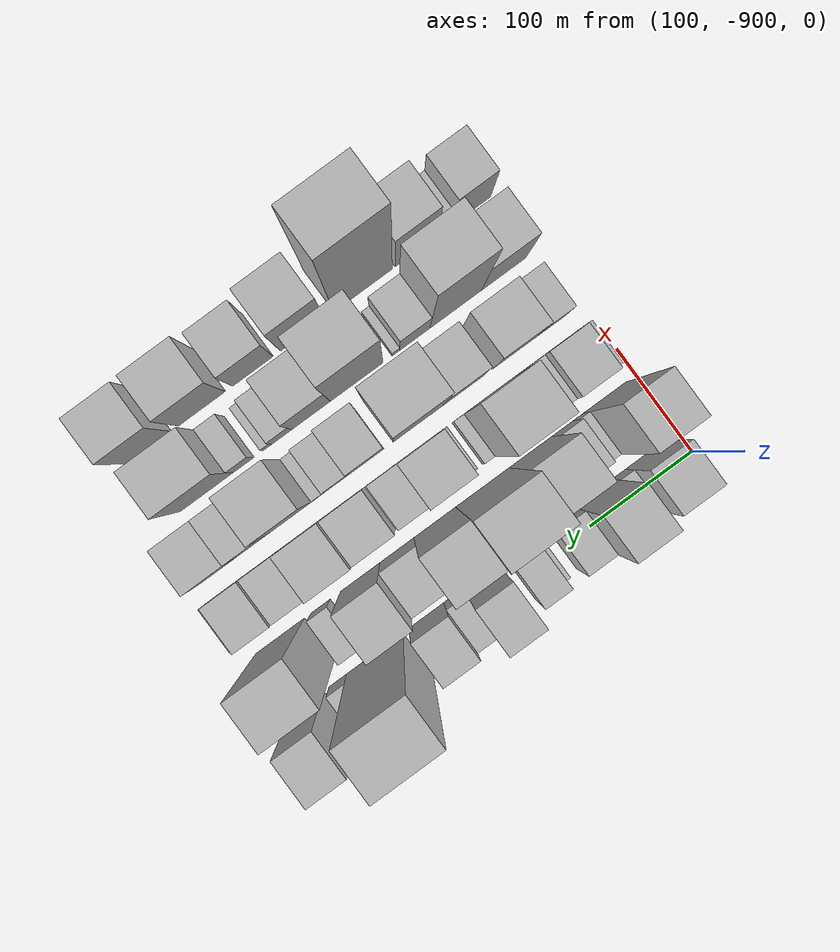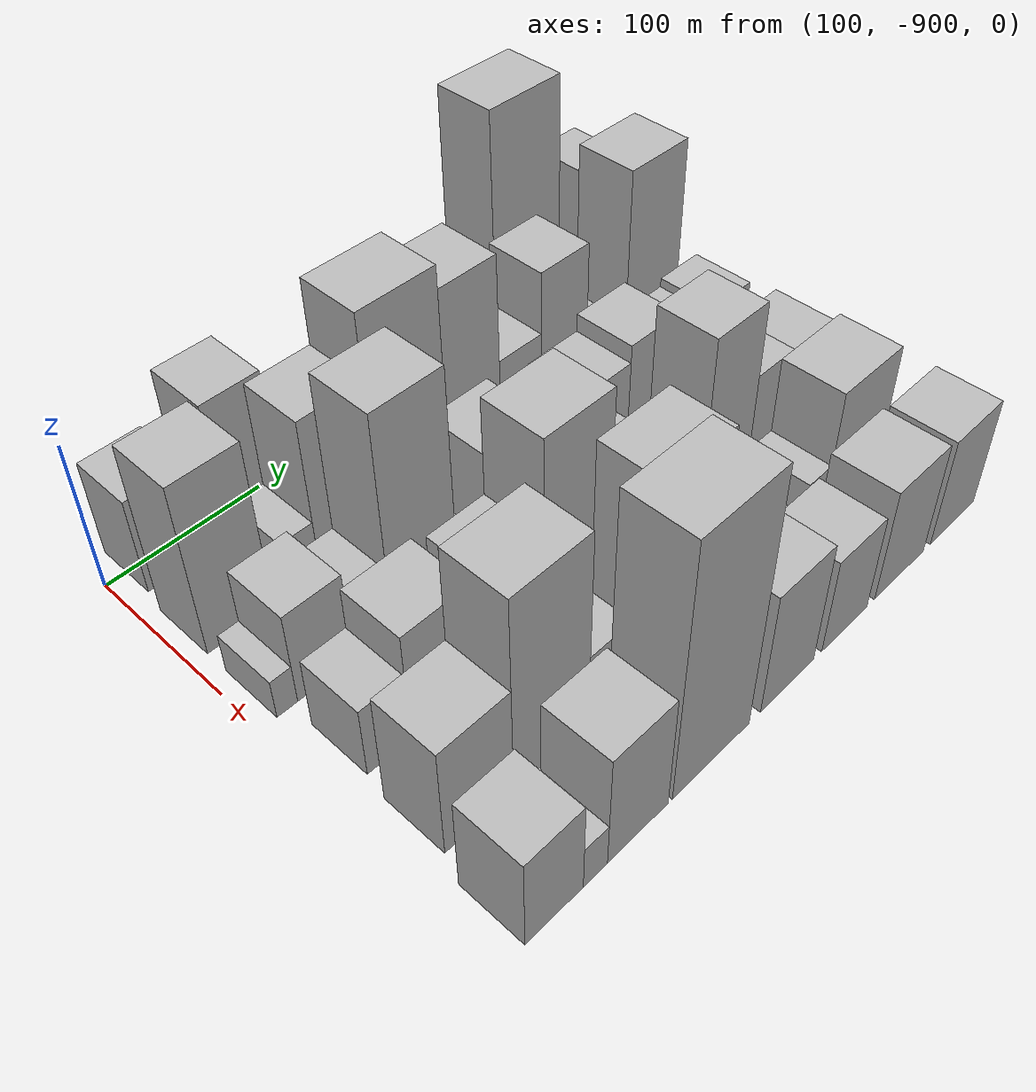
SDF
<sdf version="1.6">
 <world name="default">
  <model name="building_1">
   <static>1</static>
   <pose>100.0000 -868.0368 0 0.000000 0.000000 0.000000</pose>
   <link name="link">
    <pose>0 0 33.00 0 0 0</pose>
    <collision name="collision"><geometry><box><size>40.0000 37.9263 66.0000</size></box></geometry></collision>
    <visual name="visual">
     <cast_shadows>0</cast_shadows>
     <geometry><box><size>40.0000 37.9263 66.0000</size></box></geometry>
     <material>
      <script>
       <uri>model://HANNAS_wall/materials/scripts</uri>
       <uri>model://HANNAS_wall/materials/textures</uri>
       <name>vrc/HANNAS_wall</name>
      </script>
     </material>
    </visual>
   </link>
  </model>
  <model name="building_2">
   <static>1</static>
   <pose>100.0000 -842.5686 0 0.000000 0.000000 0.000000</pose>
   <link name="link">
    <pose>0 0 13.50 0 0 0</pose>
    <collision name="collision"><geometry><box><size>40.0000 13.0102 27.0000</size></box></geometry></collision>
    <visual name="visual">
     <cast_shadows>0</cast_shadows>
     <geometry><box><size>40.0000 13.0102 27.0000</size></box></geometry>
     <material>
      <script>
       <uri>model://HANNAS_wall/materials/scripts</uri>
       <uri>model://HANNAS_wall/materials/textures</uri>
       <name>vrc/HANNAS_wall</name>
      </script>
     </material>
    </visual>
   </link>
  </model>
  <model name="building_3">
   <static>1</static>
   <pose>100.0000 -817.3078 0 0.000000 0.000000 0.000000</pose>
   <link name="link">
    <pose>0 0 48.00 0 0 0</pose>
    <collision name="collision"><geometry><box><size>40.0000 37.5114 96.0000</size></box></geometry></collision>
    <visual name="visual">
     <cast_shadows>0</cast_shadows>
     <geometry><box><size>40.0000 37.5114 96.0000</size></box></geometry>
     <material>
      <script>
       <uri>model://HANNAS_wall/materials/scripts</uri>
       <uri>model://HANNAS_wall/materials/textures</uri>
       <name>vrc/HANNAS_wall</name>
      </script>
     </material>
    </visual>
   </link>
  </model>
  <model name="building_4">
   <static>1</static>
   <pose>100.0000 -785.2617 0 0.000000 0.000000 0.000000</pose>
   <link name="link">
    <pose>0 0 22.50 0 0 0</pose>
    <collision name="collision"><geometry><box><size>40.0000 26.5808 45.0000</size></box></geometry></collision>
    <visual name="visual">
     <cast_shadows>0</cast_shadows>
     <geometry><box><size>40.0000 26.5808 45.0000</size></box></geometry>
     <material>
      <script>
       <uri>model://HANNAS_wall/materials/scripts</uri>
       <uri>model://HANNAS_wall/materials/textures</uri>
       <name>vrc/HANNAS_wall</name>
      </script>
     </material>
    </visual>
   </link>
  </model>
  <model name="building_5">
   <static>1</static>
   <pose>100.0000 -759.9221 0 0.000000 0.000000 0.000000</pose>
   <link name="link">
    <pose>0 0 7.50 0 0 0</pose>
    <collision name="collision"><geometry><box><size>40.0000 6.0984 15.0000</size></box></geometry></collision>
    <visual name="visual">
     <cast_shadows>0</cast_shadows>
     <geometry><box><size>40.0000 6.0984 15.0000</size></box></geometry>
     <material>
      <script>
       <uri>model://HANNAS_wall/materials/scripts</uri>
       <uri>model://HANNAS_wall/materials/textures</uri>
       <name>vrc/HANNAS_wall</name>
      </script>
     </material>
    </visual>
   </link>
  </model>
  <model name="building_6">
   <static>1</static>
   <pose>100.0000 -744.2797 0 0.000000 0.000000 0.000000</pose>
   <link name="link">
    <pose>0 0 24.00 0 0 0</pose>
    <collision name="collision"><geometry><box><size>40.0000 25.1863 48.0000</size></box></geometry></collision>
    <visual name="visual">
     <cast_shadows>0</cast_shadows>
     <geometry><box><size>40.0000 25.1863 48.0000</size></box></geometry>
     <material>
      <script>
       <uri>model://HANNAS_wall/materials/scripts</uri>
       <uri>model://HANNAS_wall/materials/textures</uri>
       <name>vrc/HANNAS_wall</name>
      </script>
     </material>
    </visual>
   </link>
  </model>
  <model name="building_7">
   <static>1</static>
   <pose>100.0000 -707.6128 0 0.000000 0.000000 0.000000</pose>
   <link name="link">
    <pose>0 0 48.00 0 0 0</pose>
    <collision name="collision"><geometry><box><size>40.0000 32.1476 96.0000</size></box></geometry></collision>
    <visual name="visual">
     <cast_shadows>0</cast_shadows>
     <geometry><box><size>40.0000 32.1476 96.0000</size></box></geometry>
     <material>
      <script>
       <uri>model://HANNAS_wall/materials/scripts</uri>
       <uri>model://HANNAS_wall/materials/textures</uri>
       <name>vrc/HANNAS_wall</name>
      </script>
     </material>
    </visual>
   </link>
  </model>
  <model name="building_8">
   <static>1</static>
   <pose>100.0000 -681.8017 0 0.000000 0.000000 0.000000</pose>
   <link name="link">
    <pose>0 0 16.50 0 0 0</pose>
    <collision name="collision"><geometry><box><size>40.0000 19.4746 33.0000</size></box></geometry></collision>
    <visual name="visual">
     <cast_shadows>0</cast_shadows>
     <geometry><box><size>40.0000 19.4746 33.0000</size></box></geometry>
     <material>
      <script>
       <uri>model://HANNAS_wall/materials/scripts</uri>
       <uri>model://HANNAS_wall/materials/textures</uri>
       <name>vrc/HANNAS_wall</name>
      </script>
     </material>
    </visual>
   </link>
  </model>
  <model name="building_9">
   <static>1</static>
   <pose>100.0000 -655.2285 0 0.000000 0.000000 0.000000</pose>
   <link name="link">
    <pose>0 0 28.50 0 0 0</pose>
    <collision name="collision"><geometry><box><size>40.0000 33.6718 57.0000</size></box></geometry></collision>
    <visual name="visual">
     <cast_shadows>0</cast_shadows>
     <geometry><box><size>40.0000 33.6718 57.0000</size></box></geometry>
     <material>
      <script>
       <uri>model://HANNAS_wall/materials/scripts</uri>
       <uri>model://HANNAS_wall/materials/textures</uri>
       <name>vrc/HANNAS_wall</name>
      </script>
     </material>
    </visual>
   </link>
  </model>
  <model name="building_10">
   <static>1</static>
   <pose>100.0000 -604.8652 0 0.000000 0.000000 0.000000</pose>
   <link name="link">
    <pose>0 0 87.00 0 0 0</pose>
    <collision name="collision"><geometry><box><size>40.0000 55.0547 174.0000</size></box></geometry></collision>
    <visual name="visual">
     <cast_shadows>0</cast_shadows>
     <geometry><box><size>40.0000 55.0547 174.0000</size></box></geometry>
     <material>
      <script>
       <uri>model://HANNAS_wall/materials/scripts</uri>
       <uri>model://HANNAS_wall/materials/textures</uri>
       <name>vrc/HANNAS_wall</name>
      </script>
     </material>
    </visual>
   </link>
  </model>
  <model name="building_11">
   <static>1</static>
   <pose>100.0000 -568.7729 0 0.000000 0.000000 0.000000</pose>
   <link name="link">
    <pose>0 0 15.00 0 0 0</pose>
    <collision name="collision"><geometry><box><size>40.0000 17.1299 30.0000</size></box></geometry></collision>
    <visual name="visual">
     <cast_shadows>0</cast_shadows>
     <geometry><box><size>40.0000 17.1299 30.0000</size></box></geometry>
     <material>
      <script>
       <uri>model://HANNAS_wall/materials/scripts</uri>
       <uri>model://HANNAS_wall/materials/textures</uri>
       <name>vrc/HANNAS_wall</name>
      </script>
     </material>
    </visual>
   </link>
  </model>
  <model name="building_12">
   <static>1</static>
   <pose>100.0000 -538.1384 0 0.000000 0.000000 0.000000</pose>
   <link name="link">
    <pose>0 0 49.50 0 0 0</pose>
    <collision name="collision"><geometry><box><size>40.0000 34.1391 99.0000</size></box></geometry></collision>
    <visual name="visual">
     <cast_shadows>0</cast_shadows>
     <geometry><box><size>40.0000 34.1391 99.0000</size></box></geometry>
     <material>
      <script>
       <uri>model://HANNAS_wall/materials/scripts</uri>
       <uri>model://HANNAS_wall/materials/textures</uri>
       <name>vrc/HANNAS_wall</name>
      </script>
     </material>
    </visual>
   </link>
  </model>
  <model name="building_53">
   <static>1</static>
   <pose>155.0000 -869.2800 0 0.000000 0.000000 0.000000</pose>
   <link name="link">
    <pose>0 0 58.50 0 0 0</pose>
    <collision name="collision"><geometry><box><size>40.0000 41.4399 117.0000</size></box></geometry></collision>
    <visual name="visual">
     <cast_shadows>0</cast_shadows>
     <geometry><box><size>40.0000 41.4399 117.0000</size></box></geometry>
     <material>
      <script>
       <uri>model://HANNAS_wall/materials/scripts</uri>
       <uri>model://HANNAS_wall/materials/textures</uri>
       <name>vrc/HANNAS_wall</name>
      </script>
     </material>
    </visual>
   </link>
  </model>
  <model name="building_54">
   <static>1</static>
   <pose>155.0000 -843.5102 0 0.000000 0.000000 0.000000</pose>
   <link name="link">
    <pose>0 0 12.00 0 0 0</pose>
    <collision name="collision"><geometry><box><size>40.0000 10.0998 24.0000</size></box></geometry></collision>
    <visual name="visual">
     <cast_shadows>0</cast_shadows>
     <geometry><box><size>40.0000 10.0998 24.0000</size></box></geometry>
     <material>
      <script>
       <uri>model://HANNAS_wall/materials/scripts</uri>
       <uri>model://HANNAS_wall/materials/textures</uri>
       <name>vrc/HANNAS_wall</name>
      </script>
     </material>
    </visual>
   </link>
  </model>
  <model name="building_55">
   <static>1</static>
   <pose>155.0000 -828.0218 0 0.000000 0.000000 0.000000</pose>
   <link name="link">
    <pose>0 0 19.50 0 0 0</pose>
    <collision name="collision"><geometry><box><size>40.0000 20.8770 39.0000</size></box></geometry></collision>
    <visual name="visual">
     <cast_shadows>0</cast_shadows>
     <geometry><box><size>40.0000 20.8770 39.0000</size></box></geometry>
     <material>
      <script>
       <uri>model://HANNAS_wall/materials/scripts</uri>
       <uri>model://HANNAS_wall/materials/textures</uri>
       <name>vrc/HANNAS_wall</name>
      </script>
     </material>
    </visual>
   </link>
  </model>
  <model name="building_56">
   <static>1</static>
   <pose>155.0000 -796.8776 0 0.000000 0.000000 0.000000</pose>
   <link name="link">
    <pose>0 0 54.00 0 0 0</pose>
    <collision name="collision"><geometry><box><size>40.0000 41.4112 108.0000</size></box></geometry></collision>
    <visual name="visual">
     <cast_shadows>0</cast_shadows>
     <geometry><box><size>40.0000 41.4112 108.0000</size></box></geometry>
     <material>
      <script>
       <uri>model://HANNAS_wall/materials/scripts</uri>
       <uri>model://HANNAS_wall/materials/textures</uri>
       <name>vrc/HANNAS_wall</name>
      </script>
     </material>
    </visual>
   </link>
  </model>
  <model name="building_57">
   <static>1</static>
   <pose>155.0000 -750.1377 0 0.000000 0.000000 0.000000</pose>
   <link name="link">
    <pose>0 0 75.00 0 0 0</pose>
    <collision name="collision"><geometry><box><size>40.0000 52.0687 150.0000</size></box></geometry></collision>
    <visual name="visual">
     <cast_shadows>0</cast_shadows>
     <geometry><box><size>40.0000 52.0687 150.0000</size></box></geometry>
     <material>
      <script>
       <uri>model://HANNAS_wall/materials/scripts</uri>
       <uri>model://HANNAS_wall/materials/textures</uri>
       <name>vrc/HANNAS_wall</name>
      </script>
     </material>
    </visual>
   </link>
  </model>
  <model name="building_58">
   <static>1</static>
   <pose>155.0000 -703.7140 0 0.000000 0.000000 0.000000</pose>
   <link name="link">
    <pose>0 0 67.50 0 0 0</pose>
    <collision name="collision"><geometry><box><size>40.0000 40.7788 135.0000</size></box></geometry></collision>
    <visual name="visual">
     <cast_shadows>0</cast_shadows>
     <geometry><box><size>40.0000 40.7788 135.0000</size></box></geometry>
     <material>
      <script>
       <uri>model://HANNAS_wall/materials/scripts</uri>
       <uri>model://HANNAS_wall/materials/textures</uri>
       <name>vrc/HANNAS_wall</name>
      </script>
     </material>
    </visual>
   </link>
  </model>
  <model name="building_59">
   <static>1</static>
   <pose>155.0000 -666.7864 0 0.000000 0.000000 0.000000</pose>
   <link name="link">
    <pose>0 0 31.50 0 0 0</pose>
    <collision name="collision"><geometry><box><size>40.0000 33.0764 63.0000</size></box></geometry></collision>
    <visual name="visual">
     <cast_shadows>0</cast_shadows>
     <geometry><box><size>40.0000 33.0764 63.0000</size></box></geometry>
     <material>
      <script>
       <uri>model://HANNAS_wall/materials/scripts</uri>
       <uri>model://HANNAS_wall/materials/textures</uri>
       <name>vrc/HANNAS_wall</name>
      </script>
     </material>
    </visual>
   </link>
  </model>
  <model name="building_60">
   <static>1</static>
   <pose>155.0000 -631.1089 0 0.000000 0.000000 0.000000</pose>
   <link name="link">
    <pose>0 0 52.50 0 0 0</pose>
    <collision name="collision"><geometry><box><size>40.0000 38.2786 105.0000</size></box></geometry></collision>
    <visual name="visual">
     <cast_shadows>0</cast_shadows>
     <geometry><box><size>40.0000 38.2786 105.0000</size></box></geometry>
     <material>
      <script>
       <uri>model://HANNAS_wall/materials/scripts</uri>
       <uri>model://HANNAS_wall/materials/textures</uri>
       <name>vrc/HANNAS_wall</name>
      </script>
     </material>
    </visual>
   </link>
  </model>
  <model name="building_61">
   <static>1</static>
   <pose>155.0000 -592.5322 0 0.000000 0.000000 0.000000</pose>
   <link name="link">
    <pose>0 0 18.00 0 0 0</pose>
    <collision name="collision"><geometry><box><size>40.0000 18.8749 36.0000</size></box></geometry></collision>
    <visual name="visual">
     <cast_shadows>0</cast_shadows>
     <geometry><box><size>40.0000 18.8749 36.0000</size></box></geometry>
     <material>
      <script>
       <uri>model://HANNAS_wall/materials/scripts</uri>
       <uri>model://HANNAS_wall/materials/textures</uri>
       <name>vrc/HANNAS_wall</name>
      </script>
     </material>
    </visual>
   </link>
  </model>
  <model name="building_62">
   <static>1</static>
   <pose>155.0000 -553.3188 0 0.000000 0.000000 0.000000</pose>
   <link name="link">
    <pose>0 0 67.50 0 0 0</pose>
    <collision name="collision"><geometry><box><size>40.0000 47.5519 135.0000</size></box></geometry></collision>
    <visual name="visual">
     <cast_shadows>0</cast_shadows>
     <geometry><box><size>40.0000 47.5519 135.0000</size></box></geometry>
     <material>
      <script>
       <uri>model://HANNAS_wall/materials/scripts</uri>
       <uri>model://HANNAS_wall/materials/textures</uri>
       <name>vrc/HANNAS_wall</name>
      </script>
     </material>
    </visual>
   </link>
  </model>
  <model name="building_107">
   <static>1</static>
   <pose>210.0000 -883.6579 0 0.000000 0.000000 0.000000</pose>
   <link name="link">
    <pose>0 0 13.50 0 0 0</pose>
    <collision name="collision"><geometry><box><size>40.0000 12.6842 27.0000</size></box></geometry></collision>
    <visual name="visual">
     <cast_shadows>0</cast_shadows>
     <geometry><box><size>40.0000 12.6842 27.0000</size></box></geometry>
     <material>
      <script>
       <uri>model://HANNAS_wall/materials/scripts</uri>
       <uri>model://HANNAS_wall/materials/textures</uri>
       <name>vrc/HANNAS_wall</name>
      </script>
     </material>
    </visual>
   </link>
  </model>
  <model name="building_108">
   <static>1</static>
   <pose>210.0000 -859.7049 0 0.000000 0.000000 0.000000</pose>
   <link name="link">
    <pose>0 0 31.50 0 0 0</pose>
    <collision name="collision"><geometry><box><size>40.0000 35.2219 63.0000</size></box></geometry></collision>
    <visual name="visual">
     <cast_shadows>0</cast_shadows>
     <geometry><box><size>40.0000 35.2219 63.0000</size></box></geometry>
     <material>
      <script>
       <uri>model://HANNAS_wall/materials/scripts</uri>
       <uri>model://HANNAS_wall/materials/textures</uri>
       <name>vrc/HANNAS_wall</name>
      </script>
     </material>
    </visual>
   </link>
  </model>
  <model name="building_109">
   <static>1</static>
   <pose>210.0000 -829.1341 0 0.000000 0.000000 0.000000</pose>
   <link name="link">
    <pose>0 0 22.50 0 0 0</pose>
    <collision name="collision"><geometry><box><size>40.0000 25.9196 45.0000</size></box></geometry></collision>
    <visual name="visual">
     <cast_shadows>0</cast_shadows>
     <geometry><box><size>40.0000 25.9196 45.0000</size></box></geometry>
     <material>
      <script>
       <uri>model://HANNAS_wall/materials/scripts</uri>
       <uri>model://HANNAS_wall/materials/textures</uri>
       <name>vrc/HANNAS_wall</name>
      </script>
     </material>
    </visual>
   </link>
  </model>
  <model name="building_110">
   <static>1</static>
   <pose>210.0000 -793.3968 0 0.000000 0.000000 0.000000</pose>
   <link name="link">
    <pose>0 0 73.50 0 0 0</pose>
    <collision name="collision"><geometry><box><size>40.0000 45.5552 147.0000</size></box></geometry></collision>
    <visual name="visual">
     <cast_shadows>0</cast_shadows>
     <geometry><box><size>40.0000 45.5552 147.0000</size></box></geometry>
     <material>
      <script>
       <uri>model://HANNAS_wall/materials/scripts</uri>
       <uri>model://HANNAS_wall/materials/textures</uri>
       <name>vrc/HANNAS_wall</name>
      </script>
     </material>
    </visual>
   </link>
  </model>
  <model name="building_111">
   <static>1</static>
   <pose>210.0000 -765.7696 0 0.000000 0.000000 0.000000</pose>
   <link name="link">
    <pose>0 0 10.50 0 0 0</pose>
    <collision name="collision"><geometry><box><size>40.0000 9.6991 21.0000</size></box></geometry></collision>
    <visual name="visual">
     <cast_shadows>0</cast_shadows>
     <geometry><box><size>40.0000 9.6991 21.0000</size></box></geometry>
     <material>
      <script>
       <uri>model://HANNAS_wall/materials/scripts</uri>
       <uri>model://HANNAS_wall/materials/textures</uri>
       <name>vrc/HANNAS_wall</name>
      </script>
     </material>
    </visual>
   </link>
  </model>
  <model name="building_112">
   <static>1</static>
   <pose>210.0000 -751.7838 0 0.000000 0.000000 0.000000</pose>
   <link name="link">
    <pose>0 0 7.50 0 0 0</pose>
    <collision name="collision"><geometry><box><size>40.0000 6.2725 15.0000</size></box></geometry></collision>
    <visual name="visual">
     <cast_shadows>0</cast_shadows>
     <geometry><box><size>40.0000 6.2725 15.0000</size></box></geometry>
     <material>
      <script>
       <uri>model://HANNAS_wall/materials/scripts</uri>
       <uri>model://HANNAS_wall/materials/textures</uri>
       <name>vrc/HANNAS_wall</name>
      </script>
     </material>
    </visual>
   </link>
  </model>
  <model name="building_113">
   <static>1</static>
   <pose>210.0000 -727.8147 0 0.000000 0.000000 0.000000</pose>
   <link name="link">
    <pose>0 0 37.50 0 0 0</pose>
    <collision name="collision"><geometry><box><size>40.0000 41.6658 75.0000</size></box></geometry></collision>
    <visual name="visual">
     <cast_shadows>0</cast_shadows>
     <geometry><box><size>40.0000 41.6658 75.0000</size></box></geometry>
     <material>
      <script>
       <uri>model://HANNAS_wall/materials/scripts</uri>
       <uri>model://HANNAS_wall/materials/textures</uri>
       <name>vrc/HANNAS_wall</name>
      </script>
     </material>
    </visual>
   </link>
  </model>
  <model name="building_114">
   <static>1</static>
   <pose>210.0000 -693.0109 0 0.000000 0.000000 0.000000</pose>
   <link name="link">
    <pose>0 0 24.00 0 0 0</pose>
    <collision name="collision"><geometry><box><size>40.0000 27.9417 48.0000</size></box></geometry></collision>
    <visual name="visual">
     <cast_shadows>0</cast_shadows>
     <geometry><box><size>40.0000 27.9417 48.0000</size></box></geometry>
     <material>
      <script>
       <uri>model://HANNAS_wall/materials/scripts</uri>
       <uri>model://HANNAS_wall/materials/textures</uri>
       <name>vrc/HANNAS_wall</name>
      </script>
     </material>
    </visual>
   </link>
  </model>
  <model name="building_115">
   <static>1</static>
   <pose>210.0000 -656.7747 0 0.000000 0.000000 0.000000</pose>
   <link name="link">
    <pose>0 0 33.00 0 0 0</pose>
    <collision name="collision"><geometry><box><size>40.0000 38.5308 66.0000</size></box></geometry></collision>
    <visual name="visual">
     <cast_shadows>0</cast_shadows>
     <geometry><box><size>40.0000 38.5308 66.0000</size></box></geometry>
     <material>
      <script>
       <uri>model://HANNAS_wall/materials/scripts</uri>
       <uri>model://HANNAS_wall/materials/textures</uri>
       <name>vrc/HANNAS_wall</name>
      </script>
     </material>
    </visual>
   </link>
  </model>
  <model name="building_116">
   <static>1</static>
   <pose>210.0000 -617.6069 0 0.000000 0.000000 0.000000</pose>
   <link name="link">
    <pose>0 0 39.00 0 0 0</pose>
    <collision name="collision"><geometry><box><size>40.0000 39.8049 78.0000</size></box></geometry></collision>
    <visual name="visual">
     <cast_shadows>0</cast_shadows>
     <geometry><box><size>40.0000 39.8049 78.0000</size></box></geometry>
     <material>
      <script>
       <uri>model://HANNAS_wall/materials/scripts</uri>
       <uri>model://HANNAS_wall/materials/textures</uri>
       <name>vrc/HANNAS_wall</name>
      </script>
     </material>
    </visual>
   </link>
  </model>
  <model name="building_117">
   <static>1</static>
   <pose>210.0000 -579.8327 0 0.000000 0.000000 0.000000</pose>
   <link name="link">
    <pose>0 0 28.50 0 0 0</pose>
    <collision name="collision"><geometry><box><size>40.0000 29.7435 57.0000</size></box></geometry></collision>
    <visual name="visual">
     <cast_shadows>0</cast_shadows>
     <geometry><box><size>40.0000 29.7435 57.0000</size></box></geometry>
     <material>
      <script>
       <uri>model://HANNAS_wall/materials/scripts</uri>
       <uri>model://HANNAS_wall/materials/textures</uri>
       <name>vrc/HANNAS_wall</name>
      </script>
     </material>
    </visual>
   </link>
  </model>
  <model name="building_118">
   <static>1</static>
   <pose>210.0000 -548.5423 0 0.000000 0.000000 0.000000</pose>
   <link name="link">
    <pose>0 0 31.50 0 0 0</pose>
    <collision name="collision"><geometry><box><size>40.0000 32.8373 63.0000</size></box></geometry></collision>
    <visual name="visual">
     <cast_shadows>0</cast_shadows>
     <geometry><box><size>40.0000 32.8373 63.0000</size></box></geometry>
     <material>
      <script>
       <uri>model://HANNAS_wall/materials/scripts</uri>
       <uri>model://HANNAS_wall/materials/textures</uri>
       <name>vrc/HANNAS_wall</name>
      </script>
     </material>
    </visual>
   </link>
  </model>
  <model name="building_119">
   <static>1</static>
   <pose>210.0000 -526.5584 0 0.000000 0.000000 0.000000</pose>
   <link name="link">
    <pose>0 0 13.50 0 0 0</pose>
    <collision name="collision"><geometry><box><size>40.0000 11.1306 27.0000</size></box></geometry></collision>
    <visual name="visual">
     <cast_shadows>0</cast_shadows>
     <geometry><box><size>40.0000 11.1306 27.0000</size></box></geometry>
     <material>
      <script>
       <uri>model://HANNAS_wall/materials/scripts</uri>
       <uri>model://HANNAS_wall/materials/textures</uri>
       <name>vrc/HANNAS_wall</name>
      </script>
     </material>
    </visual>
   </link>
  </model>
  <model name="building_162">
   <static>1</static>
   <pose>265.0000 -867.4359 0 0.000000 0.000000 0.000000</pose>
   <link name="link">
    <pose>0 0 24.00 0 0 0</pose>
    <collision name="collision"><geometry><box><size>40.0000 27.1281 48.0000</size></box></geometry></collision>
    <visual name="visual">
     <cast_shadows>0</cast_shadows>
     <geometry><box><size>40.0000 27.1281 48.0000</size></box></geometry>
     <material>
      <script>
       <uri>model://HANNAS_wall/materials/scripts</uri>
       <uri>model://HANNAS_wall/materials/textures</uri>
       <name>vrc/HANNAS_wall</name>
      </script>
     </material>
    </visual>
   </link>
  </model>
  <model name="building_163">
   <static>1</static>
   <pose>265.0000 -832.4146 0 0.000000 0.000000 0.000000</pose>
   <link name="link">
    <pose>0 0 37.50 0 0 0</pose>
    <collision name="collision"><geometry><box><size>40.0000 42.9145 75.0000</size></box></geometry></collision>
    <visual name="visual">
     <cast_shadows>0</cast_shadows>
     <geometry><box><size>40.0000 42.9145 75.0000</size></box></geometry>
     <material>
      <script>
       <uri>model://HANNAS_wall/materials/scripts</uri>
       <uri>model://HANNAS_wall/materials/textures</uri>
       <name>vrc/HANNAS_wall</name>
      </script>
     </material>
    </visual>
   </link>
  </model>
  <model name="building_164">
   <static>1</static>
   <pose>265.0000 -782.6606 0 0.000000 0.000000 0.000000</pose>
   <link name="link">
    <pose>0 0 34.50 0 0 0</pose>
    <collision name="collision"><geometry><box><size>40.0000 38.5937 69.0000</size></box></geometry></collision>
    <visual name="visual">
     <cast_shadows>0</cast_shadows>
     <geometry><box><size>40.0000 38.5937 69.0000</size></box></geometry>
     <material>
      <script>
       <uri>model://HANNAS_wall/materials/scripts</uri>
       <uri>model://HANNAS_wall/materials/textures</uri>
       <name>vrc/HANNAS_wall</name>
      </script>
     </material>
    </visual>
   </link>
  </model>
  <model name="building_165">
   <static>1</static>
   <pose>265.0000 -739.0661 0 0.000000 0.000000 0.000000</pose>
   <link name="link">
    <pose>0 0 66.00 0 0 0</pose>
    <collision name="collision"><geometry><box><size>40.0000 48.5951 132.0000</size></box></geometry></collision>
    <visual name="visual">
     <cast_shadows>0</cast_shadows>
     <geometry><box><size>40.0000 48.5951 132.0000</size></box></geometry>
     <material>
      <script>
       <uri>model://HANNAS_wall/materials/scripts</uri>
       <uri>model://HANNAS_wall/materials/textures</uri>
       <name>vrc/HANNAS_wall</name>
      </script>
     </material>
    </visual>
   </link>
  </model>
  <model name="building_166">
   <static>1</static>
   <pose>265.0000 -688.9434 0 0.000000 0.000000 0.000000</pose>
   <link name="link">
    <pose>0 0 33.00 0 0 0</pose>
    <collision name="collision"><geometry><box><size>40.0000 33.6505 66.0000</size></box></geometry></collision>
    <visual name="visual">
     <cast_shadows>0</cast_shadows>
     <geometry><box><size>40.0000 33.6505 66.0000</size></box></geometry>
     <material>
      <script>
       <uri>model://HANNAS_wall/materials/scripts</uri>
       <uri>model://HANNAS_wall/materials/textures</uri>
       <name>vrc/HANNAS_wall</name>
      </script>
     </material>
    </visual>
   </link>
  </model>
  <model name="building_167">
   <static>1</static>
   <pose>265.0000 -660.5653 0 0.000000 0.000000 0.000000</pose>
   <link name="link">
    <pose>0 0 22.50 0 0 0</pose>
    <collision name="collision"><geometry><box><size>40.0000 23.1056 45.0000</size></box></geometry></collision>
    <visual name="visual">
     <cast_shadows>0</cast_shadows>
     <geometry><box><size>40.0000 23.1056 45.0000</size></box></geometry>
     <material>
      <script>
       <uri>model://HANNAS_wall/materials/scripts</uri>
       <uri>model://HANNAS_wall/materials/textures</uri>
       <name>vrc/HANNAS_wall</name>
      </script>
     </material>
    </visual>
   </link>
  </model>
  <model name="building_168">
   <static>1</static>
   <pose>265.0000 -643.2615 0 0.000000 0.000000 0.000000</pose>
   <link name="link">
    <pose>0 0 12.00 0 0 0</pose>
    <collision name="collision"><geometry><box><size>40.0000 11.5020 24.0000</size></box></geometry></collision>
    <visual name="visual">
     <cast_shadows>0</cast_shadows>
     <geometry><box><size>40.0000 11.5020 24.0000</size></box></geometry>
     <material>
      <script>
       <uri>model://HANNAS_wall/materials/scripts</uri>
       <uri>model://HANNAS_wall/materials/textures</uri>
       <name>vrc/HANNAS_wall</name>
      </script>
     </material>
    </visual>
   </link>
  </model>
  <model name="building_169">
   <static>1</static>
   <pose>265.0000 -616.5307 0 0.000000 0.000000 0.000000</pose>
   <link name="link">
    <pose>0 0 57.00 0 0 0</pose>
    <collision name="collision"><geometry><box><size>40.0000 41.9596 114.0000</size></box></geometry></collision>
    <visual name="visual">
     <cast_shadows>0</cast_shadows>
     <geometry><box><size>40.0000 41.9596 114.0000</size></box></geometry>
     <material>
      <script>
       <uri>model://HANNAS_wall/materials/scripts</uri>
       <uri>model://HANNAS_wall/materials/textures</uri>
       <name>vrc/HANNAS_wall</name>
      </script>
     </material>
    </visual>
   </link>
  </model>
  <model name="building_170">
   <static>1</static>
   <pose>265.0000 -579.5361 0 0.000000 0.000000 0.000000</pose>
   <link name="link">
    <pose>0 0 31.50 0 0 0</pose>
    <collision name="collision"><geometry><box><size>40.0000 32.0297 63.0000</size></box></geometry></collision>
    <visual name="visual">
     <cast_shadows>0</cast_shadows>
     <geometry><box><size>40.0000 32.0297 63.0000</size></box></geometry>
     <material>
      <script>
       <uri>model://HANNAS_wall/materials/scripts</uri>
       <uri>model://HANNAS_wall/materials/textures</uri>
       <name>vrc/HANNAS_wall</name>
      </script>
     </material>
    </visual>
   </link>
  </model>
  <model name="building_171">
   <static>1</static>
   <pose>265.0000 -545.3320 0 0.000000 0.000000 0.000000</pose>
   <link name="link">
    <pose>0 0 31.50 0 0 0</pose>
    <collision name="collision"><geometry><box><size>40.0000 36.3783 63.0000</size></box></geometry></collision>
    <visual name="visual">
     <cast_shadows>0</cast_shadows>
     <geometry><box><size>40.0000 36.3783 63.0000</size></box></geometry>
     <material>
      <script>
       <uri>model://HANNAS_wall/materials/scripts</uri>
       <uri>model://HANNAS_wall/materials/textures</uri>
       <name>vrc/HANNAS_wall</name>
      </script>
     </material>
    </visual>
   </link>
  </model>
  <model name="building_213">
   <static>1</static>
   <pose>320.0000 -862.4220 0 0.000000 0.000000 0.000000</pose>
   <link name="link">
    <pose>0 0 37.50 0 0 0</pose>
    <collision name="collision"><geometry><box><size>40.0000 43.1561 75.0000</size></box></geometry></collision>
    <visual name="visual">
     <cast_shadows>0</cast_shadows>
     <geometry><box><size>40.0000 43.1561 75.0000</size></box></geometry>
     <material>
      <script>
       <uri>model://HANNAS_wall/materials/scripts</uri>
       <uri>model://HANNAS_wall/materials/textures</uri>
       <name>vrc/HANNAS_wall</name>
      </script>
     </material>
    </visual>
   </link>
  </model>
  <model name="building_214">
   <static>1</static>
   <pose>320.0000 -815.6878 0 0.000000 0.000000 0.000000</pose>
   <link name="link">
    <pose>0 0 67.50 0 0 0</pose>
    <collision name="collision"><geometry><box><size>40.0000 50.3122 135.0000</size></box></geometry></collision>
    <visual name="visual">
     <cast_shadows>0</cast_shadows>
     <geometry><box><size>40.0000 50.3122 135.0000</size></box></geometry>
     <material>
      <script>
       <uri>model://HANNAS_wall/materials/scripts</uri>
       <uri>model://HANNAS_wall/materials/textures</uri>
       <name>vrc/HANNAS_wall</name>
      </script>
     </material>
    </visual>
   </link>
  </model>
  <model name="building_215">
   <static>1</static>
   <pose>320.0000 -776.0208 0 0.000000 0.000000 0.000000</pose>
   <link name="link">
    <pose>0 0 25.50 0 0 0</pose>
    <collision name="collision"><geometry><box><size>40.0000 29.0218 51.0000</size></box></geometry></collision>
    <visual name="visual">
     <cast_shadows>0</cast_shadows>
     <geometry><box><size>40.0000 29.0218 51.0000</size></box></geometry>
     <material>
      <script>
       <uri>model://HANNAS_wall/materials/scripts</uri>
       <uri>model://HANNAS_wall/materials/textures</uri>
       <name>vrc/HANNAS_wall</name>
      </script>
     </material>
    </visual>
   </link>
  </model>
  <model name="building_216">
   <static>1</static>
   <pose>320.0000 -757.7821 0 0.000000 0.000000 0.000000</pose>
   <link name="link">
    <pose>0 0 7.50 0 0 0</pose>
    <collision name="collision"><geometry><box><size>40.0000 7.4557 15.0000</size></box></geometry></collision>
    <visual name="visual">
     <cast_shadows>0</cast_shadows>
     <geometry><box><size>40.0000 7.4557 15.0000</size></box></geometry>
     <material>
      <script>
       <uri>model://HANNAS_wall/materials/scripts</uri>
       <uri>model://HANNAS_wall/materials/textures</uri>
       <name>vrc/HANNAS_wall</name>
      </script>
     </material>
    </visual>
   </link>
  </model>
  <model name="building_217">
   <static>1</static>
   <pose>320.0000 -719.5605 0 0.000000 0.000000 0.000000</pose>
   <link name="link">
    <pose>0 0 64.50 0 0 0</pose>
    <collision name="collision"><geometry><box><size>40.0000 50.9876 129.0000</size></box></geometry></collision>
    <visual name="visual">
     <cast_shadows>0</cast_shadows>
     <geometry><box><size>40.0000 50.9876 129.0000</size></box></geometry>
     <material>
      <script>
       <uri>model://HANNAS_wall/materials/scripts</uri>
       <uri>model://HANNAS_wall/materials/textures</uri>
       <name>vrc/HANNAS_wall</name>
      </script>
     </material>
    </visual>
   </link>
  </model>
  <model name="building_218">
   <static>1</static>
   <pose>320.0000 -675.3614 0 0.000000 0.000000 0.000000</pose>
   <link name="link">
    <pose>0 0 36.00 0 0 0</pose>
    <collision name="collision"><geometry><box><size>40.0000 37.4106 72.0000</size></box></geometry></collision>
    <visual name="visual">
     <cast_shadows>0</cast_shadows>
     <geometry><box><size>40.0000 37.4106 72.0000</size></box></geometry>
     <material>
      <script>
       <uri>model://HANNAS_wall/materials/scripts</uri>
       <uri>model://HANNAS_wall/materials/textures</uri>
       <name>vrc/HANNAS_wall</name>
      </script>
     </material>
    </visual>
   </link>
  </model>
  <model name="building_219">
   <static>1</static>
   <pose>320.0000 -646.8459 0 0.000000 0.000000 0.000000</pose>
   <link name="link">
    <pose>0 0 16.50 0 0 0</pose>
    <collision name="collision"><geometry><box><size>40.0000 19.6204 33.0000</size></box></geometry></collision>
    <visual name="visual">
     <cast_shadows>0</cast_shadows>
     <geometry><box><size>40.0000 19.6204 33.0000</size></box></geometry>
     <material>
      <script>
       <uri>model://HANNAS_wall/materials/scripts</uri>
       <uri>model://HANNAS_wall/materials/textures</uri>
       <name>vrc/HANNAS_wall</name>
      </script>
     </material>
    </visual>
   </link>
  </model>
  <model name="building_220">
   <static>1</static>
   <pose>320.0000 -632.8706 0 0.000000 0.000000 0.000000</pose>
   <link name="link">
    <pose>0 0 9.00 0 0 0</pose>
    <collision name="collision"><geometry><box><size>40.0000 8.3303 18.0000</size></box></geometry></collision>
    <visual name="visual">
     <cast_shadows>0</cast_shadows>
     <geometry><box><size>40.0000 8.3303 18.0000</size></box></geometry>
     <material>
      <script>
       <uri>model://HANNAS_wall/materials/scripts</uri>
       <uri>model://HANNAS_wall/materials/textures</uri>
       <name>vrc/HANNAS_wall</name>
      </script>
     </material>
    </visual>
   </link>
  </model>
  <model name="building_221">
   <static>1</static>
   <pose>320.0000 -609.8664 0 0.000000 0.000000 0.000000</pose>
   <link name="link">
    <pose>0 0 18.00 0 0 0</pose>
    <collision name="collision"><geometry><box><size>40.0000 19.6780 36.0000</size></box></geometry></collision>
    <visual name="visual">
     <cast_shadows>0</cast_shadows>
     <geometry><box><size>40.0000 19.6780 36.0000</size></box></geometry>
     <material>
      <script>
       <uri>model://HANNAS_wall/materials/scripts</uri>
       <uri>model://HANNAS_wall/materials/textures</uri>
       <name>vrc/HANNAS_wall</name>
      </script>
     </material>
    </visual>
   </link>
  </model>
  <model name="building_222">
   <static>1</static>
   <pose>320.0000 -573.9944 0 0.000000 0.000000 0.000000</pose>
   <link name="link">
    <pose>0 0 43.50 0 0 0</pose>
    <collision name="collision"><geometry><box><size>40.0000 52.0659 87.0000</size></box></geometry></collision>
    <visual name="visual">
     <cast_shadows>0</cast_shadows>
     <geometry><box><size>40.0000 52.0659 87.0000</size></box></geometry>
     <material>
      <script>
       <uri>model://HANNAS_wall/materials/scripts</uri>
       <uri>model://HANNAS_wall/materials/textures</uri>
       <name>vrc/HANNAS_wall</name>
      </script>
     </material>
    </visual>
   </link>
  </model>
  <model name="building_270">
   <static>1</static>
   <pose>375.0000 -872.0370 0 0.000000 0.000000 0.000000</pose>
   <link name="link">
    <pose>0 0 31.50 0 0 0</pose>
    <collision name="collision"><geometry><box><size>40.0000 35.9260 63.0000</size></box></geometry></collision>
    <visual name="visual">
     <cast_shadows>0</cast_shadows>
     <geometry><box><size>40.0000 35.9260 63.0000</size></box></geometry>
     <material>
      <script>
       <uri>model://HANNAS_wall/materials/scripts</uri>
       <uri>model://HANNAS_wall/materials/textures</uri>
       <name>vrc/HANNAS_wall</name>
      </script>
     </material>
    </visual>
   </link>
  </model>
  <model name="building_271">
   <static>1</static>
   <pose>375.0000 -846.2896 0 0.000000 0.000000 0.000000</pose>
   <link name="link">
    <pose>0 0 15.00 0 0 0</pose>
    <collision name="collision"><geometry><box><size>40.0000 15.5688 30.0000</size></box></geometry></collision>
    <visual name="visual">
     <cast_shadows>0</cast_shadows>
     <geometry><box><size>40.0000 15.5688 30.0000</size></box></geometry>
     <material>
      <script>
       <uri>model://HANNAS_wall/materials/scripts</uri>
       <uri>model://HANNAS_wall/materials/textures</uri>
       <name>vrc/HANNAS_wall</name>
      </script>
     </material>
    </visual>
   </link>
  </model>
  <model name="building_272">
   <static>1</static>
   <pose>375.0000 -817.9436 0 0.000000 0.000000 0.000000</pose>
   <link name="link">
    <pose>0 0 39.00 0 0 0</pose>
    <collision name="collision"><geometry><box><size>40.0000 41.1233 78.0000</size></box></geometry></collision>
    <visual name="visual">
     <cast_shadows>0</cast_shadows>
     <geometry><box><size>40.0000 41.1233 78.0000</size></box></geometry>
     <material>
      <script>
       <uri>model://HANNAS_wall/materials/scripts</uri>
       <uri>model://HANNAS_wall/materials/textures</uri>
       <name>vrc/HANNAS_wall</name>
      </script>
     </material>
    </visual>
   </link>
  </model>
  <model name="building_273">
   <static>1</static>
   <pose>375.0000 -766.0446 0 0.000000 0.000000 0.000000</pose>
   <link name="link">
    <pose>0 0 87.00 0 0 0</pose>
    <collision name="collision"><geometry><box><size>40.0000 56.6746 174.0000</size></box></geometry></collision>
    <visual name="visual">
     <cast_shadows>0</cast_shadows>
     <geometry><box><size>40.0000 56.6746 174.0000</size></box></geometry>
     <material>
      <script>
       <uri>model://HANNAS_wall/materials/scripts</uri>
       <uri>model://HANNAS_wall/materials/textures</uri>
       <name>vrc/HANNAS_wall</name>
      </script>
     </material>
    </visual>
   </link>
  </model>
  <model name="building_274">
   <static>1</static>
   <pose>375.0000 -707.2251 0 0.000000 0.000000 0.000000</pose>
   <link name="link">
    <pose>0 0 42.00 0 0 0</pose>
    <collision name="collision"><geometry><box><size>40.0000 42.9644 84.0000</size></box></geometry></collision>
    <visual name="visual">
     <cast_shadows>0</cast_shadows>
     <geometry><box><size>40.0000 42.9644 84.0000</size></box></geometry>
     <material>
      <script>
       <uri>model://HANNAS_wall/materials/scripts</uri>
       <uri>model://HANNAS_wall/materials/textures</uri>
       <name>vrc/HANNAS_wall</name>
      </script>
     </material>
    </visual>
   </link>
  </model>
  <model name="building_275">
   <static>1</static>
   <pose>375.0000 -659.0150 0 0.000000 0.000000 0.000000</pose>
   <link name="link">
    <pose>0 0 33.00 0 0 0</pose>
    <collision name="collision"><geometry><box><size>40.0000 39.4560 66.0000</size></box></geometry></collision>
    <visual name="visual">
     <cast_shadows>0</cast_shadows>
     <geometry><box><size>40.0000 39.4560 66.0000</size></box></geometry>
     <material>
      <script>
       <uri>model://HANNAS_wall/materials/scripts</uri>
       <uri>model://HANNAS_wall/materials/textures</uri>
       <name>vrc/HANNAS_wall</name>
      </script>
     </material>
    </visual>
   </link>
  </model>
  <model name="building_276">
   <static>1</static>
   <pose>375.0000 -609.3778 0 0.000000 0.000000 0.000000</pose>
   <link name="link">
    <pose>0 0 39.00 0 0 0</pose>
    <collision name="collision"><geometry><box><size>40.0000 45.8183 78.0000</size></box></geometry></collision>
    <visual name="visual">
     <cast_shadows>0</cast_shadows>
     <geometry><box><size>40.0000 45.8183 78.0000</size></box></geometry>
     <material>
      <script>
       <uri>model://HANNAS_wall/materials/scripts</uri>
       <uri>model://HANNAS_wall/materials/textures</uri>
       <name>vrc/HANNAS_wall</name>
      </script>
     </material>
    </visual>
   </link>
  </model>
  <model name="building_277">
   <static>1</static>
   <pose>375.0000 -557.7913 0 0.000000 0.000000 0.000000</pose>
   <link name="link">
    <pose>0 0 37.50 0 0 0</pose>
    <collision name="collision"><geometry><box><size>40.0000 43.3547 75.0000</size></box></geometry></collision>
    <visual name="visual">
     <cast_shadows>0</cast_shadows>
     <geometry><box><size>40.0000 43.3547 75.0000</size></box></geometry>
     <material>
      <script>
       <uri>model://HANNAS_wall/materials/scripts</uri>
       <uri>model://HANNAS_wall/materials/textures</uri>
       <name>vrc/HANNAS_wall</name>
      </script>
     </material>
    </visual>
   </link>
  </model>
 </world>
</sdf>
